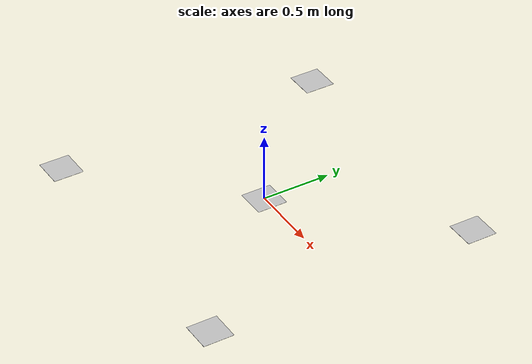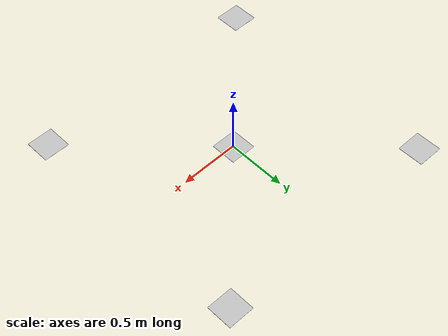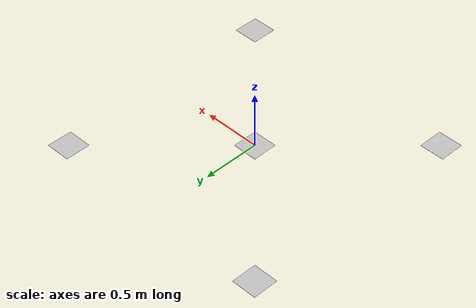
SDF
<?xml version="1.0"?>
<sdf version="1.5">
    <model name="aruco_2_99">
        <static>true</static>
        <link name="aruco_2_99_link">

<visual name="visual_marker_2_156">
    <pose>-1.0 -1.0 0.0 0.0 0.0 1.57079632679</pose>
    <cast_shadows>false</cast_shadows>
    <geometry>
        <box>
            <size>0.22 0.22 1e-3</size>
        </box>
    </geometry>
    <material>
        <script>
            <uri>model://aruco_cmit_txt/materials/scripts</uri>
            <uri>model://aruco_cmit_txt/materials/textures</uri>
            <name>aruco/marker_2_156</name>
        </script>
    </material>
</visual>

<visual name="visual_marker_2_157">
    <pose>1.0 -1.0 0.0 0.0 0.0 1.57079632679</pose>
    <cast_shadows>false</cast_shadows>
    <geometry>
        <box>
            <size>0.22 0.22 1e-3</size>
        </box>
    </geometry>
    <material>
        <script>
            <uri>model://aruco_cmit_txt/materials/scripts</uri>
            <uri>model://aruco_cmit_txt/materials/textures</uri>
            <name>aruco/marker_2_157</name>
        </script>
    </material>
</visual>

<visual name="visual_marker_2_158">
    <pose>-1.0 1.0 0.0 0.0 0.0 1.57079632679</pose>
    <cast_shadows>false</cast_shadows>
    <geometry>
        <box>
            <size>0.22 0.22 1e-3</size>
        </box>
    </geometry>
    <material>
        <script>
            <uri>model://aruco_cmit_txt/materials/scripts</uri>
            <uri>model://aruco_cmit_txt/materials/textures</uri>
            <name>aruco/marker_2_158</name>
        </script>
    </material>
</visual>

<visual name="visual_marker_2_159">
    <pose>1.0 1.0 0.0 0.0 0.0 1.57079632679</pose>
    <cast_shadows>false</cast_shadows>
    <geometry>
        <box>
            <size>0.22 0.22 1e-3</size>
        </box>
    </geometry>
    <material>
        <script>
            <uri>model://aruco_cmit_txt/materials/scripts</uri>
            <uri>model://aruco_cmit_txt/materials/textures</uri>
            <name>aruco/marker_2_159</name>
        </script>
    </material>
</visual>

<visual name="visual_marker_2_160">
    <pose>0.0 0.0 0.0 0.0 0.0 1.57079632679</pose>
    <cast_shadows>false</cast_shadows>
    <geometry>
        <box>
            <size>0.22 0.22 1e-3</size>
        </box>
    </geometry>
    <material>
        <script>
            <uri>model://aruco_cmit_txt/materials/scripts</uri>
            <uri>model://aruco_cmit_txt/materials/textures</uri>
            <name>aruco/marker_2_160</name>
        </script>
    </material>
</visual>

        </link>
    </model>
</sdf>
